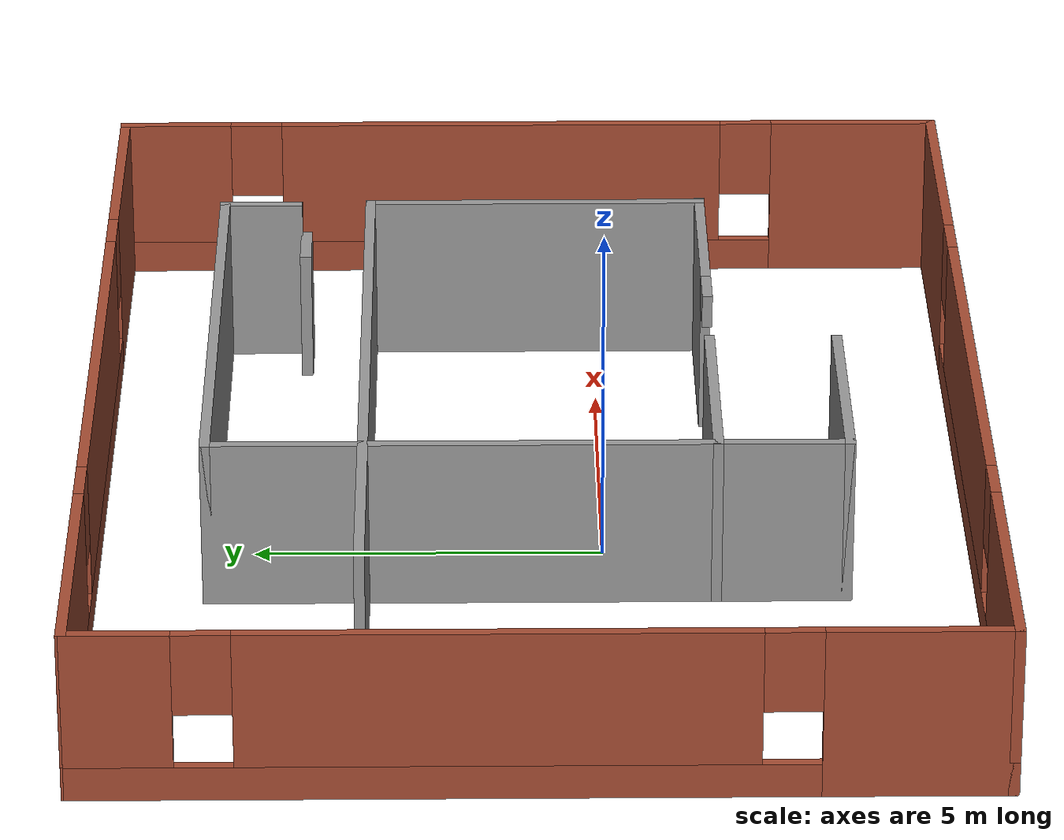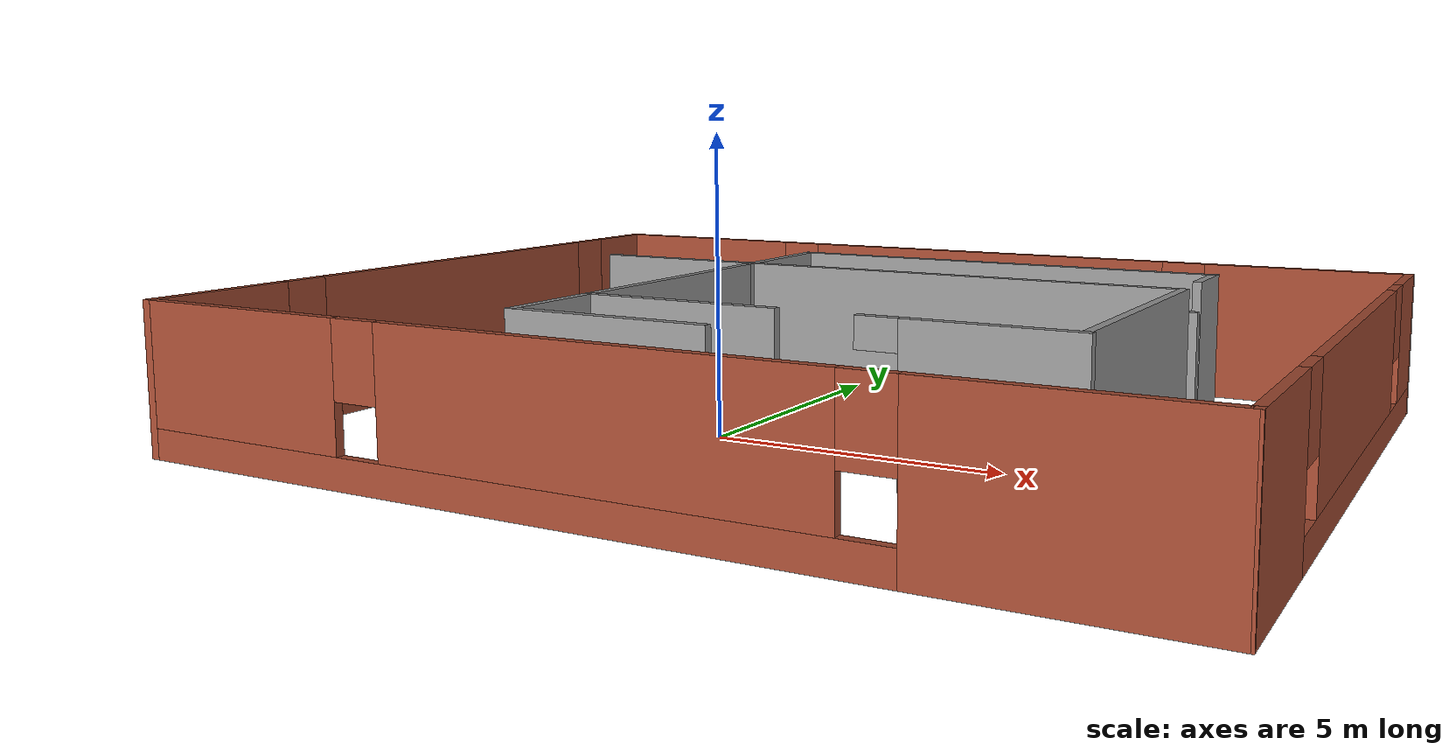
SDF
<?xml version='1.0'?>
<sdf version='1.7'>
  <model name='test.world'>
    <pose>1.40503 0.972605 0 0 -0 0</pose>
    <link name='Door_0'>
      <collision name='Door_0_Collision'>
        <geometry>
          <box>
            <size>0.9 0.17 2</size>
          </box>
        </geometry>
        <pose>0 0 1 0 -0 0</pose>
      </collision>
      <visual name='Door_0_Visual'>
        <pose>0 0 1 0 -0 0</pose>
        <geometry>
          <box>
            <size>0.9 0.17 2</size>
          </box>
        </geometry>
        <material>
          <script>
            <uri>file://media/materials/scripts/gazebo.material</uri>
            <name>Gazebo/Grey</name>
          </script>
        </material>
      </visual>
      <pose>4.89573 3.41011 0 0 -0 0</pose>
    </link>
    <link name='Wall_27'>
      <pose>8.29997 0 0 0 -0 1.57001</pose>
      <visual name='Wall_27_Visual_0'>
        <pose>-5.10204 0 1.25 0 -0 0</pose>
        <geometry>
          <box>
            <size>2.58072 0.15 2.5</size>
          </box>
        </geometry>
        <material>
          <script>
            <uri>file://media/materials/scripts/gazebo.material</uri>
            <name>Gazebo/Bricks</name>
          </script>
          <ambient>1 1 1 1</ambient>
        </material>
        <meta>
          <layer>0</layer>
        </meta>
      </visual>
      <collision name='Wall_27_Collision_0'>
        <geometry>
          <box>
            <size>2.58072 0.15 2.5</size>
          </box>
        </geometry>
        <pose>-5.10204 0 1.25 0 -0 0</pose>
      </collision>
      <visual name='Wall_27_Visual_1'>
        <pose>1.29036 0 0.25 0 -0 0</pose>
        <geometry>
          <box>
            <size>10.2041 0.15 0.5</size>
          </box>
        </geometry>
        <material>
          <script>
            <uri>file://media/materials/scripts/gazebo.material</uri>
            <name>Gazebo/Bricks</name>
          </script>
          <ambient>1 1 1 1</ambient>
        </material>
        <meta>
          <layer>0</layer>
        </meta>
      </visual>
      <collision name='Wall_27_Collision_1'>
        <geometry>
          <box>
            <size>10.2041 0.15 0.5</size>
          </box>
        </geometry>
        <pose>1.29036 0 0.25 0 -0 0</pose>
      </collision>
      <visual name='Wall_27_Visual_2'>
        <pose>0.427512 0 1.5 0 -0 0</pose>
        <geometry>
          <box>
            <size>6.87839 0.15 2</size>
          </box>
        </geometry>
        <material>
          <script>
            <uri>file://media/materials/scripts/gazebo.material</uri>
            <name>Gazebo/Bricks</name>
          </script>
          <ambient>1 1 1 1</ambient>
        </material>
        <meta>
          <layer>0</layer>
        </meta>
      </visual>
      <collision name='Wall_27_Collision_2'>
        <geometry>
          <box>
            <size>6.87839 0.15 2</size>
          </box>
        </geometry>
        <pose>0.427512 0 1.5 0 -0 0</pose>
      </collision>
      <visual name='Wall_27_Visual_3'>
        <pose>5.52955 0 1.5 0 -0 0</pose>
        <geometry>
          <box>
            <size>1.72569 0.15 2</size>
          </box>
        </geometry>
        <material>
          <script>
            <uri>file://media/materials/scripts/gazebo.material</uri>
            <name>Gazebo/Bricks</name>
          </script>
          <ambient>1 1 1 1</ambient>
        </material>
        <meta>
          <layer>0</layer>
        </meta>
      </visual>
      <collision name='Wall_27_Collision_3'>
        <geometry>
          <box>
            <size>1.72569 0.15 2</size>
          </box>
        </geometry>
        <pose>5.52955 0 1.5 0 -0 0</pose>
      </collision>
      <visual name='Wall_27_Visual_4'>
        <pose>-3.41168 0 1.9 0 -0 0</pose>
        <geometry>
          <box>
            <size>0.8 0.15 1.2</size>
          </box>
        </geometry>
        <material>
          <script>
            <uri>file://media/materials/scripts/gazebo.material</uri>
            <name>Gazebo/Bricks</name>
          </script>
          <ambient>1 1 1 1</ambient>
        </material>
        <meta>
          <layer>0</layer>
        </meta>
      </visual>
      <collision name='Wall_27_Collision_4'>
        <geometry>
          <box>
            <size>0.8 0.15 1.2</size>
          </box>
        </geometry>
        <pose>-3.41168 0 1.9 0 -0 0</pose>
      </collision>
      <visual name='Wall_27_Visual_5'>
        <pose>4.26671 0 1.9 0 -0 0</pose>
        <geometry>
          <box>
            <size>0.8 0.15 1.2</size>
          </box>
        </geometry>
        <material>
          <script>
            <uri>file://media/materials/scripts/gazebo.material</uri>
            <name>Gazebo/Bricks</name>
          </script>
          <ambient>1 1 1 1</ambient>
        </material>
        <meta>
          <layer>0</layer>
        </meta>
      </visual>
      <collision name='Wall_27_Collision_5'>
        <geometry>
          <box>
            <size>0.8 0.15 1.2</size>
          </box>
        </geometry>
        <pose>4.26671 0 1.9 0 -0 0</pose>
      </collision>
    </link>
    <link name='Wall_28'>
      <pose>0.004971 6.3174 0 0 -0 3.14159</pose>
      <visual name='Wall_28_Visual_0'>
        <pose>-6.55757 0 1.25 0 -0 0</pose>
        <geometry>
          <box>
            <size>3.63487 0.15 2.5</size>
          </box>
        </geometry>
        <material>
          <script>
            <uri>file://media/materials/scripts/gazebo.material</uri>
            <name>Gazebo/Bricks</name>
          </script>
          <ambient>1 1 1 1</ambient>
        </material>
        <meta>
          <layer>0</layer>
        </meta>
      </visual>
      <collision name='Wall_28_Collision_0'>
        <geometry>
          <box>
            <size>3.63487 0.15 2.5</size>
          </box>
        </geometry>
        <pose>-6.55757 0 1.25 0 -0 0</pose>
      </collision>
      <visual name='Wall_28_Visual_1'>
        <pose>1.81743 0 0.25 0 -0 0</pose>
        <geometry>
          <box>
            <size>13.1151 0.15 0.5</size>
          </box>
        </geometry>
        <material>
          <script>
            <uri>file://media/materials/scripts/gazebo.material</uri>
            <name>Gazebo/Bricks</name>
          </script>
          <ambient>1 1 1 1</ambient>
        </material>
        <meta>
          <layer>0</layer>
        </meta>
      </visual>
      <collision name='Wall_28_Collision_1'>
        <geometry>
          <box>
            <size>13.1151 0.15 0.5</size>
          </box>
        </geometry>
        <pose>1.81743 0 0.25 0 -0 0</pose>
      </collision>
      <visual name='Wall_28_Visual_2'>
        <pose>-0.225747 0 1.5 0 -0 0</pose>
        <geometry>
          <box>
            <size>7.42877 0.15 2</size>
          </box>
        </geometry>
        <material>
          <script>
            <uri>file://media/materials/scripts/gazebo.material</uri>
            <name>Gazebo/Bricks</name>
          </script>
          <ambient>1 1 1 1</ambient>
        </material>
        <meta>
          <layer>0</layer>
        </meta>
      </visual>
      <collision name='Wall_28_Collision_2'>
        <geometry>
          <box>
            <size>7.42877 0.15 2</size>
          </box>
        </geometry>
        <pose>-0.225747 0 1.5 0 -0 0</pose>
      </collision>
      <visual name='Wall_28_Visual_3'>
        <pose>6.33182 0 1.5 0 -0 0</pose>
        <geometry>
          <box>
            <size>4.08636 0.15 2</size>
          </box>
        </geometry>
        <material>
          <script>
            <uri>file://media/materials/scripts/gazebo.material</uri>
            <name>Gazebo/Bricks</name>
          </script>
          <ambient>1 1 1 1</ambient>
        </material>
        <meta>
          <layer>0</layer>
        </meta>
      </visual>
      <collision name='Wall_28_Collision_3'>
        <geometry>
          <box>
            <size>4.08636 0.15 2</size>
          </box>
        </geometry>
        <pose>6.33182 0 1.5 0 -0 0</pose>
      </collision>
      <visual name='Wall_28_Visual_4'>
        <pose>-4.34013 0 1.9 0 -0 0</pose>
        <geometry>
          <box>
            <size>0.8 0.15 1.2</size>
          </box>
        </geometry>
        <material>
          <script>
            <uri>file://media/materials/scripts/gazebo.material</uri>
            <name>Gazebo/Bricks</name>
          </script>
          <ambient>1 1 1 1</ambient>
        </material>
        <meta>
          <layer>0</layer>
        </meta>
      </visual>
      <collision name='Wall_28_Collision_4'>
        <geometry>
          <box>
            <size>0.8 0.15 1.2</size>
          </box>
        </geometry>
        <pose>-4.34013 0 1.9 0 -0 0</pose>
      </collision>
      <visual name='Wall_28_Visual_5'>
        <pose>3.88864 0 1.9 0 -0 0</pose>
        <geometry>
          <box>
            <size>0.8 0.15 1.2</size>
          </box>
        </geometry>
        <material>
          <script>
            <uri>file://media/materials/scripts/gazebo.material</uri>
            <name>Gazebo/Bricks</name>
          </script>
          <ambient>1 1 1 1</ambient>
        </material>
        <meta>
          <layer>0</layer>
        </meta>
      </visual>
      <collision name='Wall_28_Collision_5'>
        <geometry>
          <box>
            <size>0.8 0.15 1.2</size>
          </box>
        </geometry>
        <pose>3.88864 0 1.9 0 -0 0</pose>
      </collision>
    </link>
    <link name='Wall_3'>
      <pose>-0.005029 -6.3174 0 0 -0 3.14159</pose>
      <visual name='Wall_3_Visual_0'>
        <pose>-6.39432 0 1.25 0 -0 0</pose>
        <geometry>
          <box>
            <size>3.96136 0.15 2.5</size>
          </box>
        </geometry>
        <material>
          <script>
            <uri>file://media/materials/scripts/gazebo.material</uri>
            <name>Gazebo/Bricks</name>
          </script>
          <ambient>1 1 1 1</ambient>
        </material>
        <meta>
          <layer>0</layer>
        </meta>
      </visual>
      <collision name='Wall_3_Collision_0'>
        <geometry>
          <box>
            <size>3.96136 0.15 2.5</size>
          </box>
        </geometry>
        <pose>-6.39432 0 1.25 0 -0 0</pose>
      </collision>
      <visual name='Wall_3_Visual_1'>
        <pose>1.98068 0 0.25 0 -0 0</pose>
        <geometry>
          <box>
            <size>12.7886 0.15 0.5</size>
          </box>
        </geometry>
        <material>
          <script>
            <uri>file://media/materials/scripts/gazebo.material</uri>
            <name>Gazebo/Bricks</name>
          </script>
          <ambient>1 1 1 1</ambient>
        </material>
        <meta>
          <layer>0</layer>
        </meta>
      </visual>
      <collision name='Wall_3_Collision_1'>
        <geometry>
          <box>
            <size>12.7886 0.15 0.5</size>
          </box>
        </geometry>
        <pose>1.98068 0 0.25 0 -0 0</pose>
      </collision>
      <visual name='Wall_3_Visual_2'>
        <pose>-0.021615 0 1.5 0 -0 0</pose>
        <geometry>
          <box>
            <size>7.18405 0.15 2</size>
          </box>
        </geometry>
        <material>
          <script>
            <uri>file://media/materials/scripts/gazebo.material</uri>
            <name>Gazebo/Bricks</name>
          </script>
          <ambient>1 1 1 1</ambient>
        </material>
        <meta>
          <layer>0</layer>
        </meta>
      </visual>
      <collision name='Wall_3_Collision_2'>
        <geometry>
          <box>
            <size>7.18405 0.15 2</size>
          </box>
        </geometry>
        <pose>-0.021615 0 1.5 0 -0 0</pose>
      </collision>
      <visual name='Wall_3_Visual_3'>
        <pose>6.3727 0 1.5 0 -0 0</pose>
        <geometry>
          <box>
            <size>4.00459 0.15 2</size>
          </box>
        </geometry>
        <material>
          <script>
            <uri>file://media/materials/scripts/gazebo.material</uri>
            <name>Gazebo/Bricks</name>
          </script>
          <ambient>1 1 1 1</ambient>
        </material>
        <meta>
          <layer>0</layer>
        </meta>
      </visual>
      <collision name='Wall_3_Collision_3'>
        <geometry>
          <box>
            <size>4.00459 0.15 2</size>
          </box>
        </geometry>
        <pose>6.3727 0 1.5 0 -0 0</pose>
      </collision>
      <visual name='Wall_3_Visual_4'>
        <pose>-4.01364 0 1.9 0 -0 0</pose>
        <geometry>
          <box>
            <size>0.8 0.15 1.2</size>
          </box>
        </geometry>
        <material>
          <script>
            <uri>file://media/materials/scripts/gazebo.material</uri>
            <name>Gazebo/Bricks</name>
          </script>
          <ambient>1 1 1 1</ambient>
        </material>
        <meta>
          <layer>0</layer>
        </meta>
      </visual>
      <collision name='Wall_3_Collision_4'>
        <geometry>
          <box>
            <size>0.8 0.15 1.2</size>
          </box>
        </geometry>
        <pose>-4.01364 0 1.9 0 -0 0</pose>
      </collision>
      <visual name='Wall_3_Visual_5'>
        <pose>3.97041 0 1.9 0 -0 0</pose>
        <geometry>
          <box>
            <size>0.8 0.15 1.2</size>
          </box>
        </geometry>
        <material>
          <script>
            <uri>file://media/materials/scripts/gazebo.material</uri>
            <name>Gazebo/Bricks</name>
          </script>
          <ambient>1 1 1 1</ambient>
        </material>
        <meta>
          <layer>0</layer>
        </meta>
      </visual>
      <collision name='Wall_3_Collision_5'>
        <geometry>
          <box>
            <size>0.8 0.15 1.2</size>
          </box>
        </geometry>
        <pose>3.97041 0 1.9 0 -0 0</pose>
      </collision>
    </link>
    <link name='Wall_31'>
      <collision name='Wall_31_Collision'>
        <geometry>
          <box>
            <size>11.5 0.15 2.5</size>
          </box>
        </geometry>
        <pose>0 0 1.25 0 -0 0</pose>
      </collision>
      <visual name='Wall_31_Visual'>
        <pose>0 0 1.25 0 -0 0</pose>
        <geometry>
          <box>
            <size>11.5 0.15 2.5</size>
          </box>
        </geometry>
        <material>
          <script>
            <uri>file://media/materials/scripts/gazebo.material</uri>
            <name>Gazebo/Grey</name>
          </script>
          <ambient>1 1 1 1</ambient>
        </material>
        <meta>
          <layer>0</layer>
        </meta>
      </visual>
      <pose>-0.349984 2.43123 0 0 -0 0</pose>
    </link>
    <link name='Wall_33'>
      <collision name='Wall_33_Collision'>
        <geometry>
          <box>
            <size>5 0.15 2.5</size>
          </box>
        </geometry>
        <pose>0 0 1.25 0 -0 0</pose>
      </collision>
      <visual name='Wall_33_Visual'>
        <pose>0 0 1.25 0 -0 0</pose>
        <geometry>
          <box>
            <size>5 0.15 2.5</size>
          </box>
        </geometry>
        <material>
          <script>
            <uri>file://media/materials/scripts/gazebo.material</uri>
            <name>Gazebo/Grey</name>
          </script>
          <ambient>1 1 1 1</ambient>
        </material>
        <meta>
          <layer>0</layer>
        </meta>
      </visual>
      <pose>-2.81301 -0.12998 0 0 -0 1.5708</pose>
    </link>
    <link name='Wall_36'>
      <collision name='Wall_36_Collision'>
        <geometry>
          <box>
            <size>5.15823 0.15 2.5</size>
          </box>
        </geometry>
        <pose>0 0 1.25 0 -0 0</pose>
      </collision>
      <visual name='Wall_36_Visual'>
        <pose>0 0 1.25 0 -0 0</pose>
        <geometry>
          <box>
            <size>5.15823 0.15 2.5</size>
          </box>
        </geometry>
        <material>
          <script>
            <uri>file://media/materials/scripts/gazebo.material</uri>
            <name>Gazebo/Grey</name>
          </script>
          <ambient>1 1 1 1</ambient>
        </material>
        <meta>
          <layer>0</layer>
        </meta>
      </visual>
      <pose>5.32502 -0.072887 0 0 -0 -1.5708</pose>
    </link>
    <link name='Wall_37'>
      <pose>3.68061 -2.577 0 0 -0 3.14159</pose>
      <visual name='Wall_37_Visual_0'>
        <pose>-0.346295 0 1.25 0 -0 0</pose>
        <geometry>
          <box>
            <size>2.80741 0.15 2.5</size>
          </box>
        </geometry>
        <material>
          <script>
            <uri>file://media/materials/scripts/gazebo.material</uri>
            <name>Gazebo/Grey</name>
          </script>
          <ambient>1 1 1 1</ambient>
        </material>
        <meta>
          <layer>0</layer>
        </meta>
      </visual>
      <collision name='Wall_37_Collision_0'>
        <geometry>
          <box>
            <size>2.80741 0.15 2.5</size>
          </box>
        </geometry>
        <pose>-0.346295 0 1.25 0 -0 0</pose>
      </collision>
      <visual name='Wall_37_Visual_1'>
        <pose>1.4037 0 2.25 0 -0 0</pose>
        <geometry>
          <box>
            <size>0.692591 0.15 0.5</size>
          </box>
        </geometry>
        <material>
          <script>
            <uri>file://media/materials/scripts/gazebo.material</uri>
            <name>Gazebo/Grey</name>
          </script>
          <ambient>1 1 1 1</ambient>
        </material>
        <meta>
          <layer>0</layer>
        </meta>
      </visual>
      <collision name='Wall_37_Collision_1'>
        <geometry>
          <box>
            <size>0.692591 0.15 0.5</size>
          </box>
        </geometry>
        <pose>1.4037 0 2.25 0 -0 0</pose>
      </collision>
    </link>
    <link name='Wall_39'>
      <collision name='Wall_39_Collision'>
        <geometry>
          <box>
            <size>3.5 0.15 2.5</size>
          </box>
        </geometry>
        <pose>0 0 1.25 0 -0 0</pose>
      </collision>
      <visual name='Wall_39_Visual'>
        <pose>0 0 1.25 0 -0 0</pose>
        <geometry>
          <box>
            <size>3.5 0.15 2.5</size>
          </box>
        </geometry>
        <material>
          <script>
            <uri>file://media/materials/scripts/gazebo.material</uri>
            <name>Gazebo/Grey</name>
          </script>
          <ambient>1 1 1 1</ambient>
        </material>
        <meta>
          <layer>0</layer>
        </meta>
      </visual>
      <pose>-1.13801 -2.55498 0 0 -0 0</pose>
    </link>
    <link name='Wall_4'>
      <pose>-8.30503 -0.017395 0 0 -0 1.5708</pose>
      <visual name='Wall_4_Visual_0'>
        <pose>-5.05398 0 1.25 0 -0 0</pose>
        <geometry>
          <box>
            <size>2.64209 0.15 2.5</size>
          </box>
        </geometry>
        <material>
          <script>
            <uri>file://media/materials/scripts/gazebo.material</uri>
            <name>Gazebo/Bricks</name>
          </script>
          <ambient>1 1 1 1</ambient>
        </material>
        <meta>
          <layer>0</layer>
        </meta>
      </visual>
      <collision name='Wall_4_Collision_0'>
        <geometry>
          <box>
            <size>2.64209 0.15 2.5</size>
          </box>
        </geometry>
        <pose>-5.05398 0 1.25 0 -0 0</pose>
      </collision>
      <visual name='Wall_4_Visual_1'>
        <pose>1.32104 0 0.25 0 -0 0</pose>
        <geometry>
          <box>
            <size>10.1079 0.15 0.5</size>
          </box>
        </geometry>
        <material>
          <script>
            <uri>file://media/materials/scripts/gazebo.material</uri>
            <name>Gazebo/Bricks</name>
          </script>
          <ambient>1 1 1 1</ambient>
        </material>
        <meta>
          <layer>0</layer>
        </meta>
      </visual>
      <collision name='Wall_4_Collision_1'>
        <geometry>
          <box>
            <size>10.1079 0.15 0.5</size>
          </box>
        </geometry>
        <pose>1.32104 0 0.25 0 -0 0</pose>
      </collision>
      <visual name='Wall_4_Visual_2'>
        <pose>0.582619 0 1.5 0 -0 0</pose>
        <geometry>
          <box>
            <size>7.0311 0.15 2</size>
          </box>
        </geometry>
        <material>
          <script>
            <uri>file://media/materials/scripts/gazebo.material</uri>
            <name>Gazebo/Bricks</name>
          </script>
          <ambient>1 1 1 1</ambient>
        </material>
        <meta>
          <layer>0</layer>
        </meta>
      </visual>
      <collision name='Wall_4_Collision_2'>
        <geometry>
          <box>
            <size>7.0311 0.15 2</size>
          </box>
        </geometry>
        <pose>0.582619 0 1.5 0 -0 0</pose>
      </collision>
      <visual name='Wall_4_Visual_3'>
        <pose>5.63659 0 1.5 0 -0 0</pose>
        <geometry>
          <box>
            <size>1.47685 0.15 2</size>
          </box>
        </geometry>
        <material>
          <script>
            <uri>file://media/materials/scripts/gazebo.material</uri>
            <name>Gazebo/Bricks</name>
          </script>
          <ambient>1 1 1 1</ambient>
        </material>
        <meta>
          <layer>0</layer>
        </meta>
      </visual>
      <collision name='Wall_4_Collision_3'>
        <geometry>
          <box>
            <size>1.47685 0.15 2</size>
          </box>
        </geometry>
        <pose>5.63659 0 1.5 0 -0 0</pose>
      </collision>
      <visual name='Wall_4_Visual_4'>
        <pose>-3.33293 0 1.9 0 -0 0</pose>
        <geometry>
          <box>
            <size>0.8 0.15 1.2</size>
          </box>
        </geometry>
        <material>
          <script>
            <uri>file://media/materials/scripts/gazebo.material</uri>
            <name>Gazebo/Bricks</name>
          </script>
          <ambient>1 1 1 1</ambient>
        </material>
        <meta>
          <layer>0</layer>
        </meta>
      </visual>
      <collision name='Wall_4_Collision_4'>
        <geometry>
          <box>
            <size>0.8 0.15 1.2</size>
          </box>
        </geometry>
        <pose>-3.33293 0 1.9 0 -0 0</pose>
      </collision>
      <visual name='Wall_4_Visual_5'>
        <pose>4.49817 0 1.9 0 -0 0</pose>
        <geometry>
          <box>
            <size>0.8 0.15 1.2</size>
          </box>
        </geometry>
        <material>
          <script>
            <uri>file://media/materials/scripts/gazebo.material</uri>
            <name>Gazebo/Bricks</name>
          </script>
          <ambient>1 1 1 1</ambient>
        </material>
        <meta>
          <layer>0</layer>
        </meta>
      </visual>
      <collision name='Wall_4_Collision_5'>
        <geometry>
          <box>
            <size>0.8 0.15 1.2</size>
          </box>
        </geometry>
        <pose>4.49817 0 1.9 0 -0 0</pose>
      </collision>
    </link>
    <link name='Wall_44'>
      <collision name='Wall_44_Collision'>
        <geometry>
          <box>
            <size>2 0.15 2.5</size>
          </box>
        </geometry>
        <pose>0 0 1.25 0 -0 0</pose>
      </collision>
      <visual name='Wall_44_Visual'>
        <pose>0 0 1.25 0 -0 0</pose>
        <geometry>
          <box>
            <size>2 0.15 2.5</size>
          </box>
        </geometry>
        <material>
          <script>
            <uri>file://media/materials/scripts/gazebo.material</uri>
            <name>Gazebo/Grey</name>
          </script>
          <ambient>1 1 1 1</ambient>
        </material>
        <meta>
          <layer>0</layer>
        </meta>
      </visual>
      <pose>-2.81301 -3.47998 0 0 -0 -1.5708</pose>
    </link>
    <link name='Wall_45'>
      <collision name='Wall_45_Collision'>
        <geometry>
          <box>
            <size>3.5 0.15 2.5</size>
          </box>
        </geometry>
        <pose>0 0 1.25 0 -0 0</pose>
      </collision>
      <visual name='Wall_45_Visual'>
        <pose>0 0 1.25 0 -0 0</pose>
        <geometry>
          <box>
            <size>3.5 0.15 2.5</size>
          </box>
        </geometry>
        <material>
          <script>
            <uri>file://media/materials/scripts/gazebo.material</uri>
            <name>Gazebo/Grey</name>
          </script>
          <ambient>1 1 1 1</ambient>
        </material>
        <meta>
          <layer>0</layer>
        </meta>
      </visual>
      <pose>-1.13801 -4.40498 0 0 -0 0</pose>
    </link>
    <link name='Wall_47'>
      <collision name='Wall_47_Collision'>
        <geometry>
          <box>
            <size>2.5 0.15 2.5</size>
          </box>
        </geometry>
        <pose>0 0 1.25 0 -0 0</pose>
      </collision>
      <visual name='Wall_47_Visual'>
        <pose>0 0 1.25 0 -0 0</pose>
        <geometry>
          <box>
            <size>2.5 0.15 2.5</size>
          </box>
        </geometry>
        <material>
          <script>
            <uri>file://media/materials/scripts/gazebo.material</uri>
            <name>Gazebo/Grey</name>
          </script>
          <ambient>1 1 1 1</ambient>
        </material>
        <meta>
          <layer>0</layer>
        </meta>
      </visual>
      <pose>-2.81301 3.47002 0 0 -0 1.5708</pose>
    </link>
    <link name='Wall_48'>
      <collision name='Wall_48_Collision'>
        <geometry>
          <box>
            <size>8.25 0.15 2.5</size>
          </box>
        </geometry>
        <pose>0 0 1.25 0 -0 0</pose>
      </collision>
      <visual name='Wall_48_Visual'>
        <pose>0 0 1.25 0 -0 0</pose>
        <geometry>
          <box>
            <size>8.25 0.15 2.5</size>
          </box>
        </geometry>
        <material>
          <script>
            <uri>file://media/materials/scripts/gazebo.material</uri>
            <name>Gazebo/Grey</name>
          </script>
          <ambient>1 1 1 1</ambient>
        </material>
        <meta>
          <layer>0</layer>
        </meta>
      </visual>
      <pose>1.23699 4.64502 0 0 -0 0</pose>
    </link>
    <link name='Wall_49'>
      <collision name='Wall_49_Collision'>
        <geometry>
          <box>
            <size>1.25 0.15 2.5</size>
          </box>
        </geometry>
        <pose>0 0 1.25 0 -0 0</pose>
      </collision>
      <visual name='Wall_49_Visual'>
        <pose>0 0 1.25 0 -0 0</pose>
        <geometry>
          <box>
            <size>1.25 0.15 2.5</size>
          </box>
        </geometry>
        <material>
          <script>
            <uri>file://media/materials/scripts/gazebo.material</uri>
            <name>Gazebo/Grey</name>
          </script>
          <ambient>1 1 1 1</ambient>
        </material>
        <meta>
          <layer>0</layer>
        </meta>
      </visual>
      <pose>5.28699 4.09502 0 0 -0 -1.5708</pose>
    </link>
    <static>1</static>
  </model>
</sdf>
